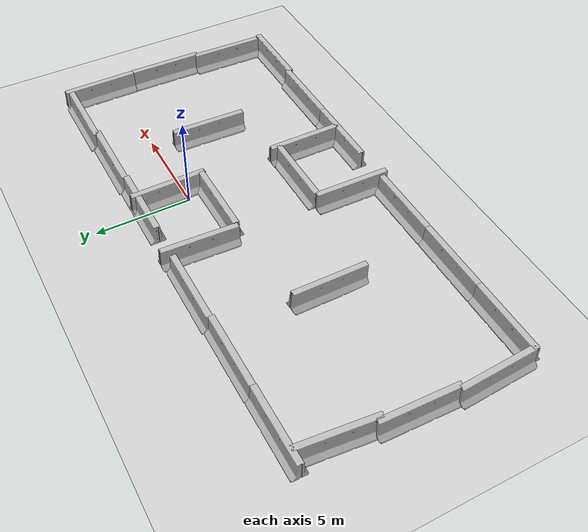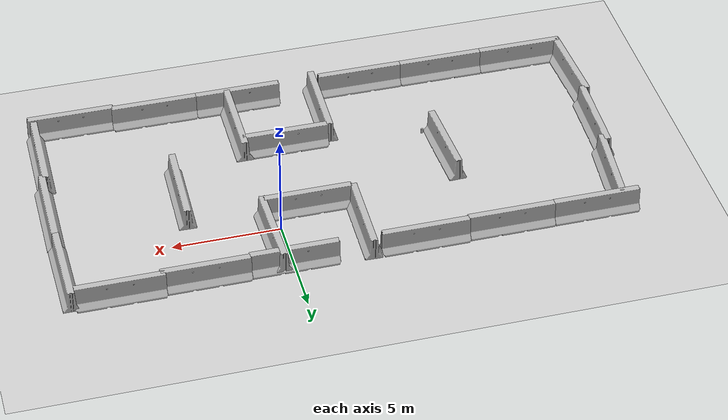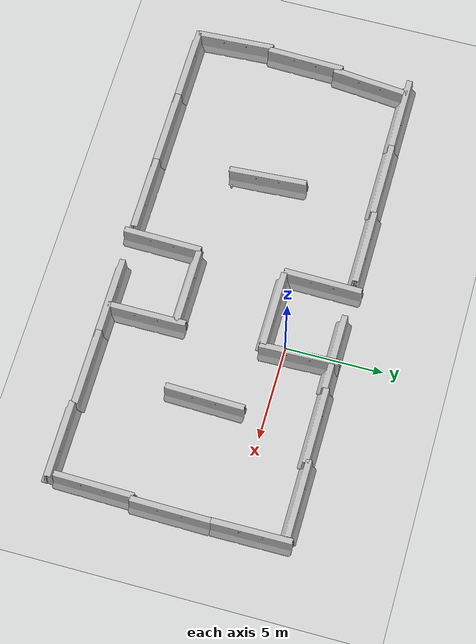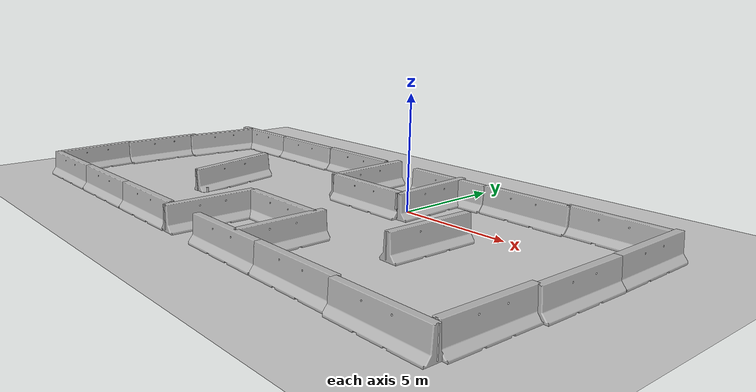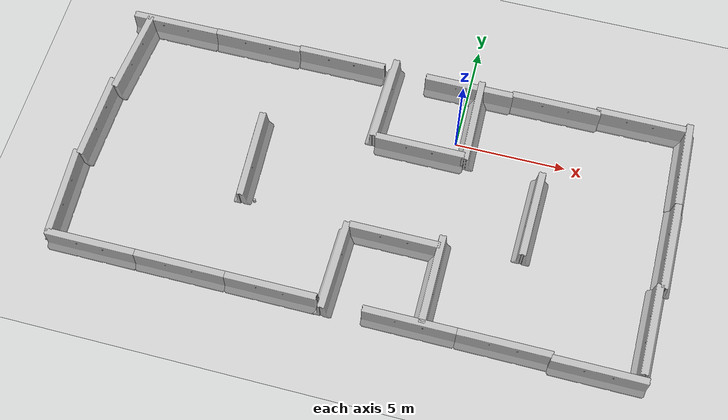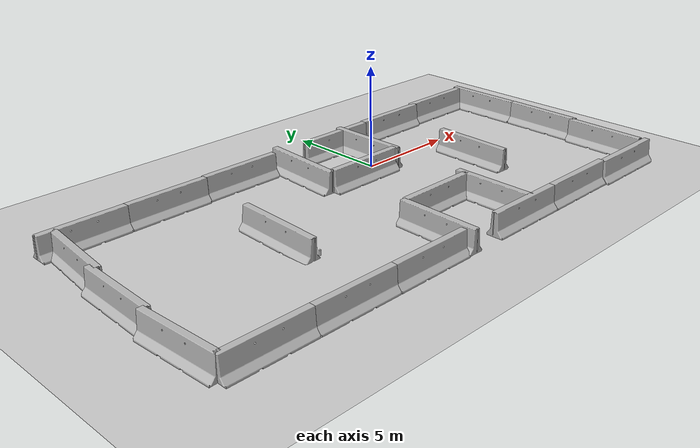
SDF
<sdf version="1.4">
 <world name="default">
  <physics type="ode">
   <max_step_size>0.001</max_step_size>
   <real_time_factor>1</real_time_factor>
   <real_time_update_rate>1000</real_time_update_rate>
   <gravity>0 0 -9.8</gravity>
  </physics>
  <scene><ambient>0.4 0.4 0.4 1</ambient><background>0.7 0.7 0.7 1</background><shadows>1</shadows></scene>
  <spherical_coordinates>
   <surface_model>EARTH_WGS84</surface_model>
   <latitude_deg>0</latitude_deg>
   <longitude_deg>0</longitude_deg>
   <elevation>0</elevation>
   <heading_deg>0</heading_deg>
  </spherical_coordinates>
  <model name="jersey_barrier">
   <static>1</static>
   <link name="link">
    <visual name="visual">
     <geometry><mesh><uri>model://jersey_barrier/meshes/jersey_barrier.dae</uri></mesh></geometry>
    </visual>
    <collision name="upright">
     <pose>0 0 0.5715 0 -0 0</pose>
     <geometry><box><size>4.06542 0.3063 1.143</size></box></geometry>
    </collision>
    <collision name="base">
     <pose>0 0 0.032258 0 -0 0</pose>
     <geometry><box><size>4.06542 0.8107 0.064516</size></box></geometry>
    </collision>
    <collision name="base2">
     <pose>0 0 0.1 0 -0 0</pose>
     <geometry><box><size>4.06542 0.65 0.1</size></box></geometry>
    </collision>
    <collision name="base3">
     <pose>0 0 0.2 0 -0 0</pose>
     <geometry><box><size>4.06542 0.5 0.1</size></box></geometry>
    </collision>
    <collision name="left-angle">
     <pose>0 -0.224 0.2401 0.9 -0 0</pose>
     <geometry><box><size>4.06542 0.5 0.064516</size></box></geometry>
    </collision>
    <collision name="right-angle">
     <pose>0 0.224 0.2401 -0.9 0 0</pose>
     <geometry><box><size>4.06542 0.5 0.064516</size></box></geometry>
    </collision>
    <velocity_decay><linear>0</linear><angular>0</angular></velocity_decay>
   </link>
   <pose>7.96747 -9.1289 0 0 -0 0</pose>
  </model>
  <model name="ground_plane">
   <static>1</static>
   <link name="link">
    <collision name="collision">
     <geometry><plane><normal>0 0 1</normal><size>100 100</size></plane></geometry>
     <surface><friction><ode><mu>100</mu><mu2>50</mu2></ode></friction></surface>
    </collision>
    <visual name="visual">
     <cast_shadows>0</cast_shadows>
     <geometry><plane><normal>0 0 1</normal><size>100 100</size></plane></geometry>
     <material>
      <script><uri>file://media/materials/scripts/gazebo.material</uri><name>Gazebo/Grey</name></script>
     </material>
    </visual>
    <velocity_decay><linear>0</linear><angular>0</angular></velocity_decay>
   </link>
   <pose>-40 41 0 0 -0 0</pose>
  </model>
  <model name="jersey_barrier_0">
   <static>1</static>
   <link name="link">
    <visual name="visual">
     <geometry><mesh><uri>model://jersey_barrier/meshes/jersey_barrier.dae</uri></mesh></geometry>
    </visual>
    <collision name="upright">
     <pose>0 0 0.5715 0 -0 0</pose>
     <geometry><box><size>4.06542 0.3063 1.143</size></box></geometry>
    </collision>
    <collision name="base">
     <pose>0 0 0.032258 0 -0 0</pose>
     <geometry><box><size>4.06542 0.8107 0.064516</size></box></geometry>
    </collision>
    <collision name="base2">
     <pose>0 0 0.1 0 -0 0</pose>
     <geometry><box><size>4.06542 0.65 0.1</size></box></geometry>
    </collision>
    <collision name="base3">
     <pose>0 0 0.2 0 -0 0</pose>
     <geometry><box><size>4.06542 0.5 0.1</size></box></geometry>
    </collision>
    <collision name="left-angle">
     <pose>0 -0.224 0.2401 0.9 -0 0</pose>
     <geometry><box><size>4.06542 0.5 0.064516</size></box></geometry>
    </collision>
    <collision name="right-angle">
     <pose>0 0.224 0.2401 -0.9 0 0</pose>
     <geometry><box><size>4.06542 0.5 0.064516</size></box></geometry>
    </collision>
    <velocity_decay><linear>0</linear><angular>0</angular></velocity_decay>
   </link>
   <pose>7.82414 2.71719 0 0 -0 0</pose>
  </model>
  <model name="jersey_barrier_1">
   <static>1</static>
   <link name="link">
    <visual name="visual">
     <geometry><mesh><uri>model://jersey_barrier/meshes/jersey_barrier.dae</uri></mesh></geometry>
    </visual>
    <collision name="upright">
     <pose>0 0 0.5715 0 -0 0</pose>
     <geometry><box><size>4.06542 0.3063 1.143</size></box></geometry>
    </collision>
    <collision name="base">
     <pose>0 0 0.032258 0 -0 0</pose>
     <geometry><box><size>4.06542 0.8107 0.064516</size></box></geometry>
    </collision>
    <collision name="base2">
     <pose>0 0 0.1 0 -0 0</pose>
     <geometry><box><size>4.06542 0.65 0.1</size></box></geometry>
    </collision>
    <collision name="base3">
     <pose>0 0 0.2 0 -0 0</pose>
     <geometry><box><size>4.06542 0.5 0.1</size></box></geometry>
    </collision>
    <collision name="left-angle">
     <pose>0 -0.224 0.2401 0.9 -0 0</pose>
     <geometry><box><size>4.06542 0.5 0.064516</size></box></geometry>
    </collision>
    <collision name="right-angle">
     <pose>0 0.224 0.2401 -0.9 0 0</pose>
     <geometry><box><size>4.06542 0.5 0.064516</size></box></geometry>
    </collision>
    <velocity_decay><linear>0</linear><angular>0</angular></velocity_decay>
   </link>
   <pose>9.77078 -6.87859 0 0 0 -1.59122</pose>
  </model>
  <model name="jersey_barrier_2">
   <static>1</static>
   <link name="link">
    <visual name="visual">
     <geometry><mesh><uri>model://jersey_barrier/meshes/jersey_barrier.dae</uri></mesh></geometry>
    </visual>
    <collision name="upright">
     <pose>0 0 0.5715 0 -0 0</pose>
     <geometry><box><size>4.06542 0.3063 1.143</size></box></geometry>
    </collision>
    <collision name="base">
     <pose>0 0 0.032258 0 -0 0</pose>
     <geometry><box><size>4.06542 0.8107 0.064516</size></box></geometry>
    </collision>
    <collision name="base2">
     <pose>0 0 0.1 0 -0 0</pose>
     <geometry><box><size>4.06542 0.65 0.1</size></box></geometry>
    </collision>
    <collision name="base3">
     <pose>0 0 0.2 0 -0 0</pose>
     <geometry><box><size>4.06542 0.5 0.1</size></box></geometry>
    </collision>
    <collision name="left-angle">
     <pose>0 -0.224 0.2401 0.9 -0 0</pose>
     <geometry><box><size>4.06542 0.5 0.064516</size></box></geometry>
    </collision>
    <collision name="right-angle">
     <pose>0 0.224 0.2401 -0.9 0 0</pose>
     <geometry><box><size>4.06542 0.5 0.064516</size></box></geometry>
    </collision>
    <velocity_decay><linear>0</linear><angular>0</angular></velocity_decay>
   </link>
   <pose>10 -3 0 0 0 -1.58482</pose>
  </model>
  <model name="jersey_barrier_3">
   <static>1</static>
   <link name="link">
    <visual name="visual">
     <geometry><mesh><uri>model://jersey_barrier/meshes/jersey_barrier.dae</uri></mesh></geometry>
    </visual>
    <collision name="upright">
     <pose>0 0 0.5715 0 -0 0</pose>
     <geometry><box><size>4.06542 0.3063 1.143</size></box></geometry>
    </collision>
    <collision name="base">
     <pose>0 0 0.032258 0 -0 0</pose>
     <geometry><box><size>4.06542 0.8107 0.064516</size></box></geometry>
    </collision>
    <collision name="base2">
     <pose>0 0 0.1 0 -0 0</pose>
     <geometry><box><size>4.06542 0.65 0.1</size></box></geometry>
    </collision>
    <collision name="base3">
     <pose>0 0 0.2 0 -0 0</pose>
     <geometry><box><size>4.06542 0.5 0.1</size></box></geometry>
    </collision>
    <collision name="left-angle">
     <pose>0 -0.224 0.2401 0.9 -0 0</pose>
     <geometry><box><size>4.06542 0.5 0.064516</size></box></geometry>
    </collision>
    <collision name="right-angle">
     <pose>0 0.224 0.2401 -0.9 0 0</pose>
     <geometry><box><size>4.06542 0.5 0.064516</size></box></geometry>
    </collision>
    <velocity_decay><linear>0</linear><angular>0</angular></velocity_decay>
   </link>
   <pose>10 1 0 0 0 -1.56615</pose>
  </model>
  <model name="jersey_barrier_4">
   <static>1</static>
   <link name="link">
    <visual name="visual">
     <geometry><mesh><uri>model://jersey_barrier/meshes/jersey_barrier.dae</uri></mesh></geometry>
    </visual>
    <collision name="upright">
     <pose>0 0 0.5715 0 -0 0</pose>
     <geometry><box><size>4.06542 0.3063 1.143</size></box></geometry>
    </collision>
    <collision name="base">
     <pose>0 0 0.032258 0 -0 0</pose>
     <geometry><box><size>4.06542 0.8107 0.064516</size></box></geometry>
    </collision>
    <collision name="base2">
     <pose>0 0 0.1 0 -0 0</pose>
     <geometry><box><size>4.06542 0.65 0.1</size></box></geometry>
    </collision>
    <collision name="base3">
     <pose>0 0 0.2 0 -0 0</pose>
     <geometry><box><size>4.06542 0.5 0.1</size></box></geometry>
    </collision>
    <collision name="left-angle">
     <pose>0 -0.224 0.2401 0.9 -0 0</pose>
     <geometry><box><size>4.06542 0.5 0.064516</size></box></geometry>
    </collision>
    <collision name="right-angle">
     <pose>0 0.224 0.2401 -0.9 0 0</pose>
     <geometry><box><size>4.06542 0.5 0.064516</size></box></geometry>
    </collision>
    <velocity_decay><linear>0</linear><angular>0</angular></velocity_decay>
   </link>
   <pose>4 -9 0 0 -0 0</pose>
  </model>
  <model name="jersey_barrier_5">
   <static>1</static>
   <link name="link">
    <visual name="visual">
     <geometry><mesh><uri>model://jersey_barrier/meshes/jersey_barrier.dae</uri></mesh></geometry>
    </visual>
    <collision name="upright">
     <pose>0 0 0.5715 0 -0 0</pose>
     <geometry><box><size>4.06542 0.3063 1.143</size></box></geometry>
    </collision>
    <collision name="base">
     <pose>0 0 0.032258 0 -0 0</pose>
     <geometry><box><size>4.06542 0.8107 0.064516</size></box></geometry>
    </collision>
    <collision name="base2">
     <pose>0 0 0.1 0 -0 0</pose>
     <geometry><box><size>4.06542 0.65 0.1</size></box></geometry>
    </collision>
    <collision name="base3">
     <pose>0 0 0.2 0 -0 0</pose>
     <geometry><box><size>4.06542 0.5 0.1</size></box></geometry>
    </collision>
    <collision name="left-angle">
     <pose>0 -0.224 0.2401 0.9 -0 0</pose>
     <geometry><box><size>4.06542 0.5 0.064516</size></box></geometry>
    </collision>
    <collision name="right-angle">
     <pose>0 0.224 0.2401 -0.9 0 0</pose>
     <geometry><box><size>4.06542 0.5 0.064516</size></box></geometry>
    </collision>
    <velocity_decay><linear>0</linear><angular>0</angular></velocity_decay>
   </link>
   <pose>0 -9 0 0 -0 0</pose>
  </model>
  <model name="jersey_barrier_6">
   <static>1</static>
   <link name="link">
    <visual name="visual">
     <geometry><mesh><uri>model://jersey_barrier/meshes/jersey_barrier.dae</uri></mesh></geometry>
    </visual>
    <collision name="upright">
     <pose>0 0 0.5715 0 -0 0</pose>
     <geometry><box><size>4.06542 0.3063 1.143</size></box></geometry>
    </collision>
    <collision name="base">
     <pose>0 0 0.032258 0 -0 0</pose>
     <geometry><box><size>4.06542 0.8107 0.064516</size></box></geometry>
    </collision>
    <collision name="base2">
     <pose>0 0 0.1 0 -0 0</pose>
     <geometry><box><size>4.06542 0.65 0.1</size></box></geometry>
    </collision>
    <collision name="base3">
     <pose>0 0 0.2 0 -0 0</pose>
     <geometry><box><size>4.06542 0.5 0.1</size></box></geometry>
    </collision>
    <collision name="left-angle">
     <pose>0 -0.224 0.2401 0.9 -0 0</pose>
     <geometry><box><size>4.06542 0.5 0.064516</size></box></geometry>
    </collision>
    <collision name="right-angle">
     <pose>0 0.224 0.2401 -0.9 0 0</pose>
     <geometry><box><size>4.06542 0.5 0.064516</size></box></geometry>
    </collision>
    <velocity_decay><linear>0</linear><angular>0</angular></velocity_decay>
   </link>
   <pose>0.504754 -7 0 0 0 -1.57145</pose>
  </model>
  <model name="jersey_barrier_7">
   <static>1</static>
   <link name="link">
    <visual name="visual">
     <geometry><mesh><uri>model://jersey_barrier/meshes/jersey_barrier.dae</uri></mesh></geometry>
    </visual>
    <collision name="upright">
     <pose>0 0 0.5715 0 -0 0</pose>
     <geometry><box><size>4.06542 0.3063 1.143</size></box></geometry>
    </collision>
    <collision name="base">
     <pose>0 0 0.032258 0 -0 0</pose>
     <geometry><box><size>4.06542 0.8107 0.064516</size></box></geometry>
    </collision>
    <collision name="base2">
     <pose>0 0 0.1 0 -0 0</pose>
     <geometry><box><size>4.06542 0.65 0.1</size></box></geometry>
    </collision>
    <collision name="base3">
     <pose>0 0 0.2 0 -0 0</pose>
     <geometry><box><size>4.06542 0.5 0.1</size></box></geometry>
    </collision>
    <collision name="left-angle">
     <pose>0 -0.224 0.2401 0.9 -0 0</pose>
     <geometry><box><size>4.06542 0.5 0.064516</size></box></geometry>
    </collision>
    <collision name="right-angle">
     <pose>0 0.224 0.2401 -0.9 0 0</pose>
     <geometry><box><size>4.06542 0.5 0.064516</size></box></geometry>
    </collision>
    <velocity_decay><linear>0</linear><angular>0</angular></velocity_decay>
   </link>
   <pose>4 2.59007 0 0 -0 0</pose>
  </model>
  <model name="jersey_barrier_8">
   <static>1</static>
   <link name="link">
    <visual name="visual">
     <geometry><mesh><uri>model://jersey_barrier/meshes/jersey_barrier.dae</uri></mesh></geometry>
    </visual>
    <collision name="upright">
     <pose>0 0 0.5715 0 -0 0</pose>
     <geometry><box><size>4.06542 0.3063 1.143</size></box></geometry>
    </collision>
    <collision name="base">
     <pose>0 0 0.032258 0 -0 0</pose>
     <geometry><box><size>4.06542 0.8107 0.064516</size></box></geometry>
    </collision>
    <collision name="base2">
     <pose>0 0 0.1 0 -0 0</pose>
     <geometry><box><size>4.06542 0.65 0.1</size></box></geometry>
    </collision>
    <collision name="base3">
     <pose>0 0 0.2 0 -0 0</pose>
     <geometry><box><size>4.06542 0.5 0.1</size></box></geometry>
    </collision>
    <collision name="left-angle">
     <pose>0 -0.224 0.2401 0.9 -0 0</pose>
     <geometry><box><size>4.06542 0.5 0.064516</size></box></geometry>
    </collision>
    <collision name="right-angle">
     <pose>0 0.224 0.2401 -0.9 0 0</pose>
     <geometry><box><size>4.06542 0.5 0.064516</size></box></geometry>
    </collision>
    <velocity_decay><linear>0</linear><angular>0</angular></velocity_decay>
   </link>
   <pose>0 2.50574 0 0 -0 0</pose>
  </model>
  <model name="jersey_barrier_9">
   <static>1</static>
   <link name="link">
    <visual name="visual">
     <geometry><mesh><uri>model://jersey_barrier/meshes/jersey_barrier.dae</uri></mesh></geometry>
    </visual>
    <collision name="upright">
     <pose>0 0 0.5715 0 -0 0</pose>
     <geometry><box><size>4.06542 0.3063 1.143</size></box></geometry>
    </collision>
    <collision name="base">
     <pose>0 0 0.032258 0 -0 0</pose>
     <geometry><box><size>4.06542 0.8107 0.064516</size></box></geometry>
    </collision>
    <collision name="base2">
     <pose>0 0 0.1 0 -0 0</pose>
     <geometry><box><size>4.06542 0.65 0.1</size></box></geometry>
    </collision>
    <collision name="base3">
     <pose>0 0 0.2 0 -0 0</pose>
     <geometry><box><size>4.06542 0.5 0.1</size></box></geometry>
    </collision>
    <collision name="left-angle">
     <pose>0 -0.224 0.2401 0.9 -0 0</pose>
     <geometry><box><size>4.06542 0.5 0.064516</size></box></geometry>
    </collision>
    <collision name="right-angle">
     <pose>0 0.224 0.2401 -0.9 0 0</pose>
     <geometry><box><size>4.06542 0.5 0.064516</size></box></geometry>
    </collision>
    <velocity_decay><linear>0</linear><angular>0</angular></velocity_decay>
   </link>
   <pose>4 -3 0 0 0 -1.59726</pose>
  </model>
  <model name="jersey_barrier_11">
   <static>1</static>
   <link name="link">
    <visual name="visual">
     <geometry><mesh><uri>model://jersey_barrier/meshes/jersey_barrier.dae</uri></mesh></geometry>
    </visual>
    <collision name="upright">
     <pose>0 0 0.5715 0 -0 0</pose>
     <geometry><box><size>4.06542 0.3063 1.143</size></box></geometry>
    </collision>
    <collision name="base">
     <pose>0 0 0.032258 0 -0 0</pose>
     <geometry><box><size>4.06542 0.8107 0.064516</size></box></geometry>
    </collision>
    <collision name="base2">
     <pose>0 0 0.1 0 -0 0</pose>
     <geometry><box><size>4.06542 0.65 0.1</size></box></geometry>
    </collision>
    <collision name="base3">
     <pose>0 0 0.2 0 -0 0</pose>
     <geometry><box><size>4.06542 0.5 0.1</size></box></geometry>
    </collision>
    <collision name="left-angle">
     <pose>0 -0.224 0.2401 0.9 -0 0</pose>
     <geometry><box><size>4.06542 0.5 0.064516</size></box></geometry>
    </collision>
    <collision name="right-angle">
     <pose>0 0.224 0.2401 -0.9 0 0</pose>
     <geometry><box><size>4.06542 0.5 0.064516</size></box></geometry>
    </collision>
    <velocity_decay><linear>0</linear><angular>0</angular></velocity_decay>
   </link>
   <pose>0.565483 0.841443 0 -0.000204 -0.009569 1.59209</pose>
  </model>
  <model name="jersey_barrier_12">
   <static>1</static>
   <link name="link">
    <visual name="visual">
     <geometry><mesh><uri>model://jersey_barrier/meshes/jersey_barrier.dae</uri></mesh></geometry>
    </visual>
    <collision name="upright">
     <pose>0 0 0.5715 0 -0 0</pose>
     <geometry><box><size>4.06542 0.3063 1.143</size></box></geometry>
    </collision>
    <collision name="base">
     <pose>0 0 0.032258 0 -0 0</pose>
     <geometry><box><size>4.06542 0.8107 0.064516</size></box></geometry>
    </collision>
    <collision name="base2">
     <pose>0 0 0.1 0 -0 0</pose>
     <geometry><box><size>4.06542 0.65 0.1</size></box></geometry>
    </collision>
    <collision name="base3">
     <pose>0 0 0.2 0 -0 0</pose>
     <geometry><box><size>4.06542 0.5 0.1</size></box></geometry>
    </collision>
    <collision name="left-angle">
     <pose>0 -0.224 0.2401 0.9 -0 0</pose>
     <geometry><box><size>4.06542 0.5 0.064516</size></box></geometry>
    </collision>
    <collision name="right-angle">
     <pose>0 0.224 0.2401 -0.9 0 0</pose>
     <geometry><box><size>4.06542 0.5 0.064516</size></box></geometry>
    </collision>
    <velocity_decay><linear>0</linear><angular>0</angular></velocity_decay>
   </link>
   <pose>-3.65854 -7.3948 0 0 0 -1.59004</pose>
  </model>
  <model name="jersey_barrier_13">
   <static>1</static>
   <link name="link">
    <visual name="visual">
     <geometry><mesh><uri>model://jersey_barrier/meshes/jersey_barrier.dae</uri></mesh></geometry>
    </visual>
    <collision name="upright">
     <pose>0 0 0.5715 0 -0 0</pose>
     <geometry><box><size>4.06542 0.3063 1.143</size></box></geometry>
    </collision>
    <collision name="base">
     <pose>0 0 0.032258 0 -0 0</pose>
     <geometry><box><size>4.06542 0.8107 0.064516</size></box></geometry>
    </collision>
    <collision name="base2">
     <pose>0 0 0.1 0 -0 0</pose>
     <geometry><box><size>4.06542 0.65 0.1</size></box></geometry>
    </collision>
    <collision name="base3">
     <pose>0 0 0.2 0 -0 0</pose>
     <geometry><box><size>4.06542 0.5 0.1</size></box></geometry>
    </collision>
    <collision name="left-angle">
     <pose>0 -0.224 0.2401 0.9 -0 0</pose>
     <geometry><box><size>4.06542 0.5 0.064516</size></box></geometry>
    </collision>
    <collision name="right-angle">
     <pose>0 0.224 0.2401 -0.9 0 0</pose>
     <geometry><box><size>4.06542 0.5 0.064516</size></box></geometry>
    </collision>
    <velocity_decay><linear>0</linear><angular>0</angular></velocity_decay>
   </link>
   <pose>-1.50115 -5.45258 0 0 -0 0</pose>
  </model>
  <model name="jersey_barrier_14">
   <static>1</static>
   <link name="link">
    <visual name="visual">
     <geometry><mesh><uri>model://jersey_barrier/meshes/jersey_barrier.dae</uri></mesh></geometry>
    </visual>
    <collision name="upright">
     <pose>0 0 0.5715 0 -0 0</pose>
     <geometry><box><size>4.06542 0.3063 1.143</size></box></geometry>
    </collision>
    <collision name="base">
     <pose>0 0 0.032258 0 -0 0</pose>
     <geometry><box><size>4.06542 0.8107 0.064516</size></box></geometry>
    </collision>
    <collision name="base2">
     <pose>0 0 0.1 0 -0 0</pose>
     <geometry><box><size>4.06542 0.65 0.1</size></box></geometry>
    </collision>
    <collision name="base3">
     <pose>0 0 0.2 0 -0 0</pose>
     <geometry><box><size>4.06542 0.5 0.1</size></box></geometry>
    </collision>
    <collision name="left-angle">
     <pose>0 -0.224 0.2401 0.9 -0 0</pose>
     <geometry><box><size>4.06542 0.5 0.064516</size></box></geometry>
    </collision>
    <collision name="right-angle">
     <pose>0 0.224 0.2401 -0.9 0 0</pose>
     <geometry><box><size>4.06542 0.5 0.064516</size></box></geometry>
    </collision>
    <velocity_decay><linear>0</linear><angular>0</angular></velocity_decay>
   </link>
   <pose>-1.47012 -1 0 0 -0 0</pose>
  </model>
  <model name="jersey_barrier_15">
   <static>1</static>
   <link name="link">
    <visual name="visual">
     <geometry><mesh><uri>model://jersey_barrier/meshes/jersey_barrier.dae</uri></mesh></geometry>
    </visual>
    <collision name="upright">
     <pose>0 0 0.5715 0 -0 0</pose>
     <geometry><box><size>4.06542 0.3063 1.143</size></box></geometry>
    </collision>
    <collision name="base">
     <pose>0 0 0.032258 0 -0 0</pose>
     <geometry><box><size>4.06542 0.8107 0.064516</size></box></geometry>
    </collision>
    <collision name="base2">
     <pose>0 0 0.1 0 -0 0</pose>
     <geometry><box><size>4.06542 0.65 0.1</size></box></geometry>
    </collision>
    <collision name="base3">
     <pose>0 0 0.2 0 -0 0</pose>
     <geometry><box><size>4.06542 0.5 0.1</size></box></geometry>
    </collision>
    <collision name="left-angle">
     <pose>0 -0.224 0.2401 0.9 -0 0</pose>
     <geometry><box><size>4.06542 0.5 0.064516</size></box></geometry>
    </collision>
    <collision name="right-angle">
     <pose>0 0.224 0.2401 -0.9 0 0</pose>
     <geometry><box><size>4.06542 0.5 0.064516</size></box></geometry>
    </collision>
    <velocity_decay><linear>0</linear><angular>0</angular></velocity_decay>
   </link>
   <pose>-6 -9 0 0 -0 0</pose>
  </model>
  <model name="jersey_barrier_16">
   <static>1</static>
   <link name="link">
    <visual name="visual">
     <geometry><mesh><uri>model://jersey_barrier/meshes/jersey_barrier.dae</uri></mesh></geometry>
    </visual>
    <collision name="upright">
     <pose>0 0 0.5715 0 -0 0</pose>
     <geometry><box><size>4.06542 0.3063 1.143</size></box></geometry>
    </collision>
    <collision name="base">
     <pose>0 0 0.032258 0 -0 0</pose>
     <geometry><box><size>4.06542 0.8107 0.064516</size></box></geometry>
    </collision>
    <collision name="base2">
     <pose>0 0 0.1 0 -0 0</pose>
     <geometry><box><size>4.06542 0.65 0.1</size></box></geometry>
    </collision>
    <collision name="base3">
     <pose>0 0 0.2 0 -0 0</pose>
     <geometry><box><size>4.06542 0.5 0.1</size></box></geometry>
    </collision>
    <collision name="left-angle">
     <pose>0 -0.224 0.2401 0.9 -0 0</pose>
     <geometry><box><size>4.06542 0.5 0.064516</size></box></geometry>
    </collision>
    <collision name="right-angle">
     <pose>0 0.224 0.2401 -0.9 0 0</pose>
     <geometry><box><size>4.06542 0.5 0.064516</size></box></geometry>
    </collision>
    <velocity_decay><linear>0</linear><angular>0</angular></velocity_decay>
   </link>
   <pose>-3.56106 1 0 -0.000487 0.019301 -1.596</pose>
  </model>
  <model name="jersey_barrier_17">
   <static>1</static>
   <link name="link">
    <visual name="visual">
     <geometry><mesh><uri>model://jersey_barrier/meshes/jersey_barrier.dae</uri></mesh></geometry>
    </visual>
    <collision name="upright">
     <pose>0 0 0.5715 0 -0 0</pose>
     <geometry><box><size>4.06542 0.3063 1.143</size></box></geometry>
    </collision>
    <collision name="base">
     <pose>0 0 0.032258 0 -0 0</pose>
     <geometry><box><size>4.06542 0.8107 0.064516</size></box></geometry>
    </collision>
    <collision name="base2">
     <pose>0 0 0.1 0 -0 0</pose>
     <geometry><box><size>4.06542 0.65 0.1</size></box></geometry>
    </collision>
    <collision name="base3">
     <pose>0 0 0.2 0 -0 0</pose>
     <geometry><box><size>4.06542 0.5 0.1</size></box></geometry>
    </collision>
    <collision name="left-angle">
     <pose>0 -0.224 0.2401 0.9 -0 0</pose>
     <geometry><box><size>4.06542 0.5 0.064516</size></box></geometry>
    </collision>
    <collision name="right-angle">
     <pose>0 0.224 0.2401 -0.9 0 0</pose>
     <geometry><box><size>4.06542 0.5 0.064516</size></box></geometry>
    </collision>
    <velocity_decay><linear>0</linear><angular>0</angular></velocity_decay>
   </link>
   <pose>-6 2.53747 0 0 -0 0</pose>
  </model>
  <model name="jersey_barrier_18">
   <static>1</static>
   <link name="link">
    <visual name="visual">
     <geometry><mesh><uri>model://jersey_barrier/meshes/jersey_barrier.dae</uri></mesh></geometry>
    </visual>
    <collision name="upright">
     <pose>0 0 0.5715 0 -0 0</pose>
     <geometry><box><size>4.06542 0.3063 1.143</size></box></geometry>
    </collision>
    <collision name="base">
     <pose>0 0 0.032258 0 -0 0</pose>
     <geometry><box><size>4.06542 0.8107 0.064516</size></box></geometry>
    </collision>
    <collision name="base2">
     <pose>0 0 0.1 0 -0 0</pose>
     <geometry><box><size>4.06542 0.65 0.1</size></box></geometry>
    </collision>
    <collision name="base3">
     <pose>0 0 0.2 0 -0 0</pose>
     <geometry><box><size>4.06542 0.5 0.1</size></box></geometry>
    </collision>
    <collision name="left-angle">
     <pose>0 -0.224 0.2401 0.9 -0 0</pose>
     <geometry><box><size>4.06542 0.5 0.064516</size></box></geometry>
    </collision>
    <collision name="right-angle">
     <pose>0 0.224 0.2401 -0.9 0 0</pose>
     <geometry><box><size>4.06542 0.5 0.064516</size></box></geometry>
    </collision>
    <velocity_decay><linear>0</linear><angular>0</angular></velocity_decay>
   </link>
   <pose>-8.57798 -3.17209 0 0.001822 0.055934 -1.53822</pose>
  </model>
  <model name="jersey_barrier_19">
   <static>1</static>
   <link name="link">
    <visual name="visual">
     <geometry><mesh><uri>model://jersey_barrier/meshes/jersey_barrier.dae</uri></mesh></geometry>
    </visual>
    <collision name="upright">
     <pose>0 0 0.5715 0 -0 0</pose>
     <geometry><box><size>4.06542 0.3063 1.143</size></box></geometry>
    </collision>
    <collision name="base">
     <pose>0 0 0.032258 0 -0 0</pose>
     <geometry><box><size>4.06542 0.8107 0.064516</size></box></geometry>
    </collision>
    <collision name="base2">
     <pose>0 0 0.1 0 -0 0</pose>
     <geometry><box><size>4.06542 0.65 0.1</size></box></geometry>
    </collision>
    <collision name="base3">
     <pose>0 0 0.2 0 -0 0</pose>
     <geometry><box><size>4.06542 0.5 0.1</size></box></geometry>
    </collision>
    <collision name="left-angle">
     <pose>0 -0.224 0.2401 0.9 -0 0</pose>
     <geometry><box><size>4.06542 0.5 0.064516</size></box></geometry>
    </collision>
    <collision name="right-angle">
     <pose>0 0.224 0.2401 -0.9 0 0</pose>
     <geometry><box><size>4.06542 0.5 0.064516</size></box></geometry>
    </collision>
    <velocity_decay><linear>0</linear><angular>0</angular></velocity_decay>
   </link>
   <pose>-10 -9 0 0 -0 0</pose>
  </model>
  <model name="jersey_barrier_20">
   <static>1</static>
   <link name="link">
    <visual name="visual">
     <geometry><mesh><uri>model://jersey_barrier/meshes/jersey_barrier.dae</uri></mesh></geometry>
    </visual>
    <collision name="upright">
     <pose>0 0 0.5715 0 -0 0</pose>
     <geometry><box><size>4.06542 0.3063 1.143</size></box></geometry>
    </collision>
    <collision name="base">
     <pose>0 0 0.032258 0 -0 0</pose>
     <geometry><box><size>4.06542 0.8107 0.064516</size></box></geometry>
    </collision>
    <collision name="base2">
     <pose>0 0 0.1 0 -0 0</pose>
     <geometry><box><size>4.06542 0.65 0.1</size></box></geometry>
    </collision>
    <collision name="base3">
     <pose>0 0 0.2 0 -0 0</pose>
     <geometry><box><size>4.06542 0.5 0.1</size></box></geometry>
    </collision>
    <collision name="left-angle">
     <pose>0 -0.224 0.2401 0.9 -0 0</pose>
     <geometry><box><size>4.06542 0.5 0.064516</size></box></geometry>
    </collision>
    <collision name="right-angle">
     <pose>0 0.224 0.2401 -0.9 0 0</pose>
     <geometry><box><size>4.06542 0.5 0.064516</size></box></geometry>
    </collision>
    <velocity_decay><linear>0</linear><angular>0</angular></velocity_decay>
   </link>
   <pose>-14 -9 0 0 -0 0</pose>
  </model>
  <model name="jersey_barrier_21">
   <static>1</static>
   <link name="link">
    <visual name="visual">
     <geometry><mesh><uri>model://jersey_barrier/meshes/jersey_barrier.dae</uri></mesh></geometry>
    </visual>
    <collision name="upright">
     <pose>0 0 0.5715 0 -0 0</pose>
     <geometry><box><size>4.06542 0.3063 1.143</size></box></geometry>
    </collision>
    <collision name="base">
     <pose>0 0 0.032258 0 -0 0</pose>
     <geometry><box><size>4.06542 0.8107 0.064516</size></box></geometry>
    </collision>
    <collision name="base2">
     <pose>0 0 0.1 0 -0 0</pose>
     <geometry><box><size>4.06542 0.65 0.1</size></box></geometry>
    </collision>
    <collision name="base3">
     <pose>0 0 0.2 0 -0 0</pose>
     <geometry><box><size>4.06542 0.5 0.1</size></box></geometry>
    </collision>
    <collision name="left-angle">
     <pose>0 -0.224 0.2401 0.9 -0 0</pose>
     <geometry><box><size>4.06542 0.5 0.064516</size></box></geometry>
    </collision>
    <collision name="right-angle">
     <pose>0 0.224 0.2401 -0.9 0 0</pose>
     <geometry><box><size>4.06542 0.5 0.064516</size></box></geometry>
    </collision>
    <velocity_decay><linear>0</linear><angular>0</angular></velocity_decay>
   </link>
   <pose>-10 2.45943 0 0 -0 0</pose>
  </model>
  <model name="jersey_barrier_22">
   <static>1</static>
   <link name="link">
    <visual name="visual">
     <geometry><mesh><uri>model://jersey_barrier/meshes/jersey_barrier.dae</uri></mesh></geometry>
    </visual>
    <collision name="upright">
     <pose>0 0 0.5715 0 -0 0</pose>
     <geometry><box><size>4.06542 0.3063 1.143</size></box></geometry>
    </collision>
    <collision name="base">
     <pose>0 0 0.032258 0 -0 0</pose>
     <geometry><box><size>4.06542 0.8107 0.064516</size></box></geometry>
    </collision>
    <collision name="base2">
     <pose>0 0 0.1 0 -0 0</pose>
     <geometry><box><size>4.06542 0.65 0.1</size></box></geometry>
    </collision>
    <collision name="base3">
     <pose>0 0 0.2 0 -0 0</pose>
     <geometry><box><size>4.06542 0.5 0.1</size></box></geometry>
    </collision>
    <collision name="left-angle">
     <pose>0 -0.224 0.2401 0.9 -0 0</pose>
     <geometry><box><size>4.06542 0.5 0.064516</size></box></geometry>
    </collision>
    <collision name="right-angle">
     <pose>0 0.224 0.2401 -0.9 0 0</pose>
     <geometry><box><size>4.06542 0.5 0.064516</size></box></geometry>
    </collision>
    <velocity_decay><linear>0</linear><angular>0</angular></velocity_decay>
   </link>
   <pose>-14 2.44283 0 0 -0 0</pose>
  </model>
  <model name="jersey_barrier_23">
   <static>1</static>
   <link name="link">
    <visual name="visual">
     <geometry><mesh><uri>model://jersey_barrier/meshes/jersey_barrier.dae</uri></mesh></geometry>
    </visual>
    <collision name="upright">
     <pose>0 0 0.5715 0 -0 0</pose>
     <geometry><box><size>4.06542 0.3063 1.143</size></box></geometry>
    </collision>
    <collision name="base">
     <pose>0 0 0.032258 0 -0 0</pose>
     <geometry><box><size>4.06542 0.8107 0.064516</size></box></geometry>
    </collision>
    <collision name="base2">
     <pose>0 0 0.1 0 -0 0</pose>
     <geometry><box><size>4.06542 0.65 0.1</size></box></geometry>
    </collision>
    <collision name="base3">
     <pose>0 0 0.2 0 -0 0</pose>
     <geometry><box><size>4.06542 0.5 0.1</size></box></geometry>
    </collision>
    <collision name="left-angle">
     <pose>0 -0.224 0.2401 0.9 -0 0</pose>
     <geometry><box><size>4.06542 0.5 0.064516</size></box></geometry>
    </collision>
    <collision name="right-angle">
     <pose>0 0.224 0.2401 -0.9 0 0</pose>
     <geometry><box><size>4.06542 0.5 0.064516</size></box></geometry>
    </collision>
    <velocity_decay><linear>0</linear><angular>0</angular></velocity_decay>
   </link>
   <pose>-16 -7 0 0 0 -1.51951</pose>
  </model>
  <model name="jersey_barrier_24">
   <static>1</static>
   <link name="link">
    <visual name="visual">
     <geometry><mesh><uri>model://jersey_barrier/meshes/jersey_barrier.dae</uri></mesh></geometry>
    </visual>
    <collision name="upright">
     <pose>0 0 0.5715 0 -0 0</pose>
     <geometry><box><size>4.06542 0.3063 1.143</size></box></geometry>
    </collision>
    <collision name="base">
     <pose>0 0 0.032258 0 -0 0</pose>
     <geometry><box><size>4.06542 0.8107 0.064516</size></box></geometry>
    </collision>
    <collision name="base2">
     <pose>0 0 0.1 0 -0 0</pose>
     <geometry><box><size>4.06542 0.65 0.1</size></box></geometry>
    </collision>
    <collision name="base3">
     <pose>0 0 0.2 0 -0 0</pose>
     <geometry><box><size>4.06542 0.5 0.1</size></box></geometry>
    </collision>
    <collision name="left-angle">
     <pose>0 -0.224 0.2401 0.9 -0 0</pose>
     <geometry><box><size>4.06542 0.5 0.064516</size></box></geometry>
    </collision>
    <collision name="right-angle">
     <pose>0 0.224 0.2401 -0.9 0 0</pose>
     <geometry><box><size>4.06542 0.5 0.064516</size></box></geometry>
    </collision>
    <velocity_decay><linear>0</linear><angular>0</angular></velocity_decay>
   </link>
   <pose>-15.8676 -3.13991 0 0 0 -1.6016</pose>
  </model>
  <model name="jersey_barrier_25">
   <static>1</static>
   <link name="link">
    <visual name="visual">
     <geometry><mesh><uri>model://jersey_barrier/meshes/jersey_barrier.dae</uri></mesh></geometry>
    </visual>
    <collision name="upright">
     <pose>0 0 0.5715 0 -0 0</pose>
     <geometry><box><size>4.06542 0.3063 1.143</size></box></geometry>
    </collision>
    <collision name="base">
     <pose>0 0 0.032258 0 -0 0</pose>
     <geometry><box><size>4.06542 0.8107 0.064516</size></box></geometry>
    </collision>
    <collision name="base2">
     <pose>0 0 0.1 0 -0 0</pose>
     <geometry><box><size>4.06542 0.65 0.1</size></box></geometry>
    </collision>
    <collision name="base3">
     <pose>0 0 0.2 0 -0 0</pose>
     <geometry><box><size>4.06542 0.5 0.1</size></box></geometry>
    </collision>
    <collision name="left-angle">
     <pose>0 -0.224 0.2401 0.9 -0 0</pose>
     <geometry><box><size>4.06542 0.5 0.064516</size></box></geometry>
    </collision>
    <collision name="right-angle">
     <pose>0 0.224 0.2401 -0.9 0 0</pose>
     <geometry><box><size>4.06542 0.5 0.064516</size></box></geometry>
    </collision>
    <velocity_decay><linear>0</linear><angular>0</angular></velocity_decay>
   </link>
   <pose>-15.4342 0.476928 0 0 0 -1.66797</pose>
  </model>
  <model name="beer_3">
   <link name="link">
    <pose>0 0 0.115 0 -0 0</pose>
    <inertial>
     <mass>0.39</mass>
     <inertia><ixx>0.00058</ixx><ixy>0</ixy><ixz>0</ixz><iyy>0.00058</iyy><iyz>0</iyz><izz>0.00019</izz></inertia>
    </inertial>
    <collision name="collision">
     <geometry><cylinder><radius>0.055</radius><length>0.23</length></cylinder></geometry>
    </collision>
    <visual name="visual">
     <geometry><cylinder><radius>0.055</radius><length>0.23</length></cylinder></geometry>
     <material>
      <script>
       <uri>model://beer/materials/scripts</uri>
       <uri>model://beer/materials/textures</uri>
       <name>Beer/Diffuse</name>
      </script>
     </material>
    </visual>
    <velocity_decay><linear>0</linear><angular>0</angular></velocity_decay>
   </link>
   <pose>-8 -5 -7e-06 -0 -0 -1e-05</pose>
   <static>0</static>
  </model>
 </world>
</sdf>
